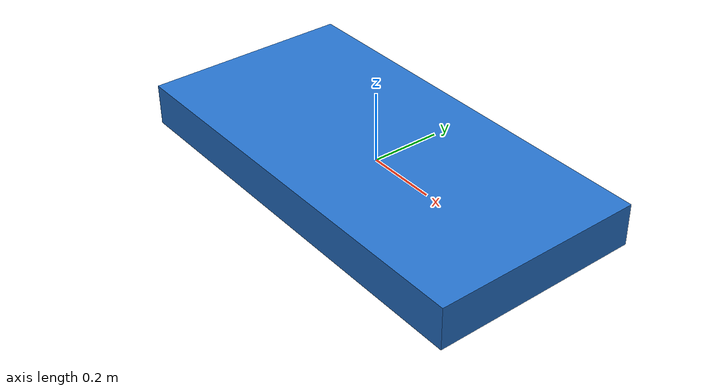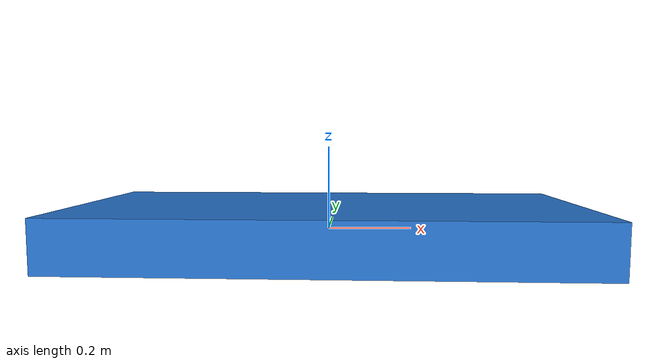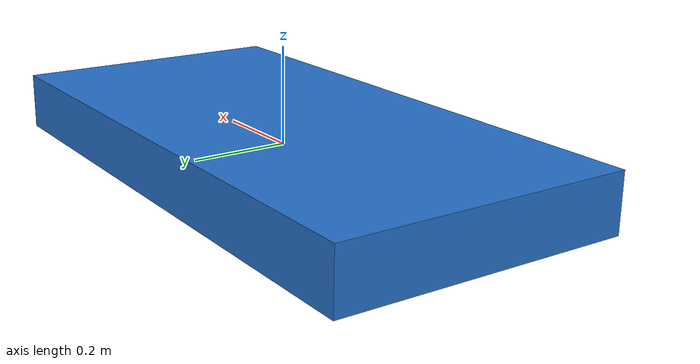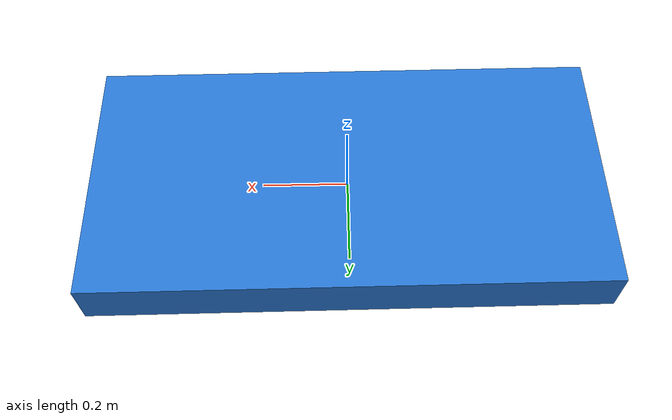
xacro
<?xml version="1.0"?>

<robot
  xmlns:xacro="http://www.ros.org/wiki/xacro"
  name="roof_component_03">

  <material name="roof_component_blue">
    <color rgba="0.15 0.45 0.80 1.0"/>
  </material>

  <link name="roof_component_03_link">

    <visual>
      <origin xyz="0 0 0" rpy="0 0 0"/>

      <geometry>
        <box size="1.20 0.60 0.12"/>
      </geometry>

      <material name="roof_component_blue"/>
    </visual>

    <collision>
      <origin xyz="0 0 0" rpy="0 0 0"/>

      <geometry>
        <box size="1.20 0.60 0.12"/>
      </geometry>
    </collision>

    <inertial>
      <origin xyz="0 0 0" rpy="0 0 0"/>

      <mass value="50.0"/>

      <inertia
        ixx="1.518"
        ixy="0.0"
        ixz="0.0"
        iyy="6.018"
        iyz="0.0"
        izz="7.500"/>
    </inertial>

  </link>

</robot>
